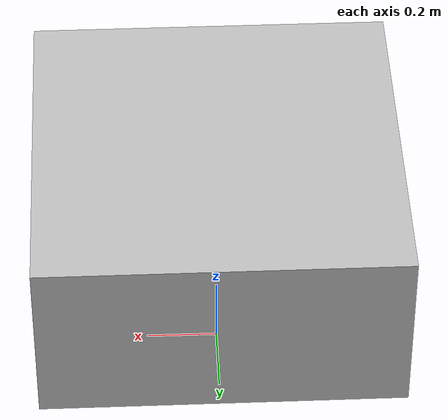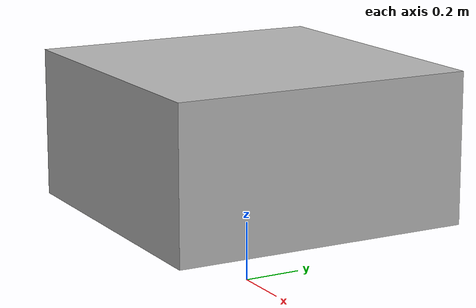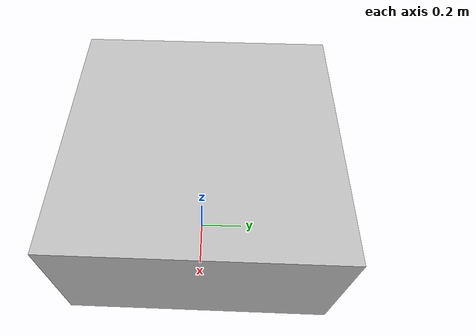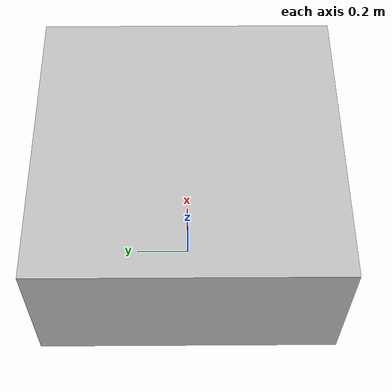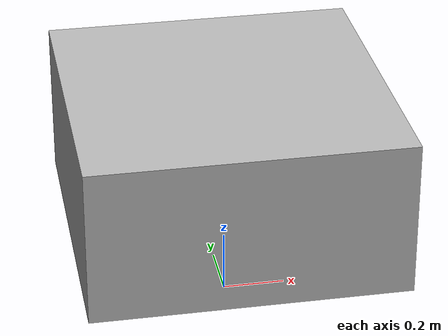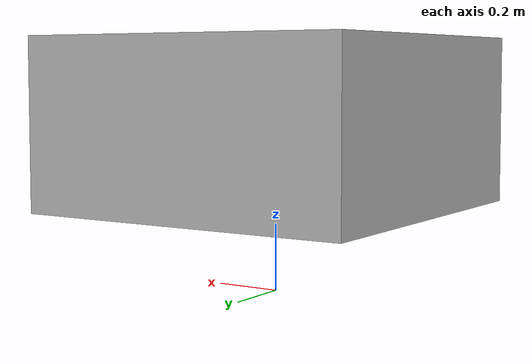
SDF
<?xml version="1.0" ?>
<sdf version="1.6">
  <model name="quadcopter_with_camera">
    <!-- Define the box as the main link -->
    <link name="box_link">
      <pose>0 0 0.5 0 0 0</pose> <!-- Adjust the pose to position the box -->

      <visual name="box_visual">
        <geometry>
          <box>
            <size>1 1 0.5</size> <!-- Define the size of the box -->
          </box>
        </geometry>
      </visual>
      <collision name="box_collision">
        <geometry>
          <box>
            <size>1 1 1</size>
          </box>
        </geometry>
      </collision>

      <!-- Attach the camera sensor to the box -->
      <sensor name="camera" type="camera">
        <pose>0.5 0 0 0 0 0 0</pose> <!-- Position the camera within or on top of the box -->
        <camera>
          <horizontal_fov>1.047</horizontal_fov>
          <image>
            <width>640</width>
            <height>480</height>
            <format>R8G8B8</format>
          </image>
          <clip>
            <near>0.1</near>
            <far>100</far>
          </clip>
        </camera>
        <always_on>1</always_on>
        <update_rate>30</update_rate>
        <visualize>true</visualize>

        <!-- ROS2 Camera Plugin to publish the camera feed -->
        <plugin name="camera_plugin" filename="libgazebo_ros_camera.dylib">
          <ros>
            <namespace>/quadcopter</namespace>
            <remapping>image_raw:=/camera/image_raw</remapping>
          </ros>
          <camera_name>camera</camera_name>
          <frame_name>box_link</frame_name> <!-- Attach the camera frame to the box link -->
        </plugin>
      </sensor>

      <sensor name="right_distance_sensor" type="ray">
        <pose>0.2 0.1 0.6 0 0 0</pose>
        <ray>
          <scan>
            <horizontal>
              <samples>1</samples>  <!-- Single ray for distance measurement -->
              <resolution>1</resolution>
              <min_angle>0</min_angle>
              <max_angle>0</max_angle>
            </horizontal>
          </scan>
          <range>
            <min>0.1</min>  <!-- Minimum measurable distance -->
            <max>10.0</max> <!-- Maximum measurable distance -->
          </range>
        </ray>
        <always_on>1</always_on>
        <update_rate>10</update_rate> <!-- Frequency of updates -->
        <plugin name="right_distance_plugin" filename="libgazebo_ros_ray_sensor.dylib">
          <ros>
            <namespace>/quadcopter</namespace>
            <remapping>out:=/quadcopter/left_distance/out</remapping>
          </ros>
          <output_type>sensor_msgs/PointCloud2</output_type> <!-- Expected output type -->
          <frameName>right_distance_sensor</frameName>
        </plugin>
      </sensor>

      <sensor name="left_distance_sensor" type="ray">
        <pose>0.2 -0.1 0.6 0 0 0</pose> <!-- Adjust position as needed -->
        <ray>
          <scan>
            <horizontal>
              <samples>1</samples>
              <resolution>1</resolution>
              <min_angle>0</min_angle>
              <max_angle>0</max_angle>
            </horizontal>
          </scan>
          <range>
            <min>0.1</min>
            <max>10.0</max>
          </range>
        </ray>
        <always_on>1</always_on>
        <update_rate>10</update_rate>
        <plugin name="left_distance_plugin" filename="libgazebo_ros_ray_sensor.dylib">
          <ros>
            <namespace>/quadcopter</namespace>
            <remapping>out:=/quadcopter/right_distance/out</remapping>
          </ros>
          <output_type>sensor_msgs/PointCloud2</output_type>
          <frameName>left_distance_sensor</frameName>
        </plugin>
      </sensor>

      <plugin name="hand_of_god" filename="libgazebo_ros_hand_of_god.dylib">
        <ros>
          <namespace>/quadcopter</namespace>
          <remapping>pose:=/cmd_pose</remapping> <!-- Remap to the desired topic -->
        </ros>
      </plugin>

    </link>
  </model>
</sdf>
